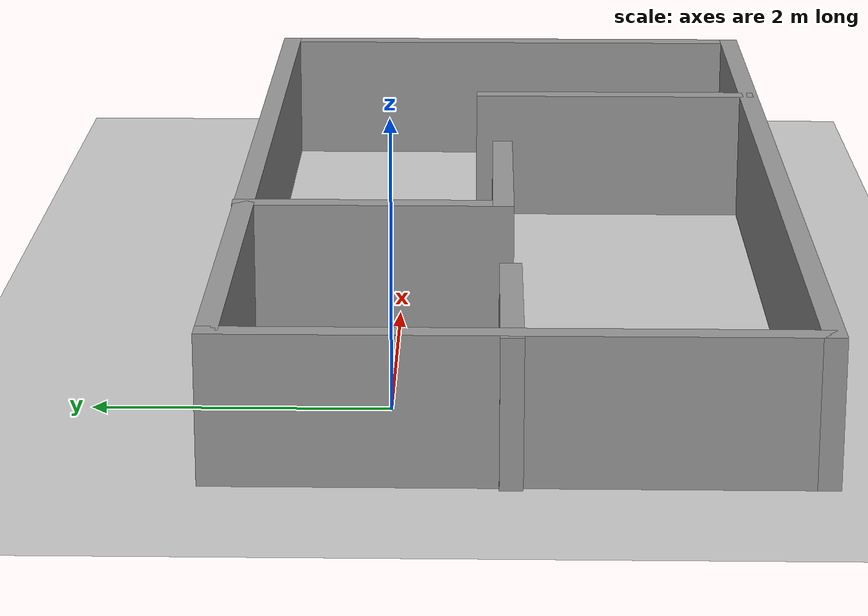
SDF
<sdf version="1.7">
 <world name="default">
  <light name="sun" type="directional">
   <pose>0 0 10 0 -0 0</pose>
   <diffuse>0.8 0.8 0.8 1</diffuse>
   <specular>0.2 0.2 0.2 1</specular>
   <attenuation>
    <range>1000</range>
    <constant>0.9</constant>
    <linear>0.01</linear>
    <quadratic>0.001</quadratic>
   </attenuation>
   <direction>-0.5 0.1 -0.9</direction>
   <spot><inner_angle>0</inner_angle><outer_angle>0</outer_angle><falloff>0</falloff></spot>
  </light>
  <model name="ground_plane">
   <static>1</static>
   <link name="link">
    <collision name="collision">
     <geometry><plane><normal>0 0 1</normal><size>100 100</size></plane></geometry>
     <surface>
      <contact><collide_bitmask>65535</collide_bitmask></contact>
      <friction><ode><mu>100</mu><mu2>50</mu2></ode></friction>
     </surface>
    </collision>
    <visual name="visual">
     <cast_shadows>0</cast_shadows>
     <geometry><plane><normal>0 0 1</normal><size>100 100</size></plane></geometry>
     <material>
      <script><uri>file://media/materials/scripts/gazebo.material</uri><name>Gazebo/Grey</name></script>
     </material>
    </visual>
   </link>
  </model>
  <gravity>0 0 -9.8</gravity>
  <magnetic_field>6e-06 2.3e-05 -4.2e-05</magnetic_field>
  <atmosphere type="adiabatic"/>
  <physics type="ode">
   <max_step_size>0.001</max_step_size>
   <real_time_factor>1</real_time_factor>
   <real_time_update_rate>1000</real_time_update_rate>
  </physics>
  <scene><ambient>0.4 0.4 0.4 1</ambient><background>0.7 0.7 0.7 1</background><shadows>1</shadows></scene>
  <audio><device>default</device></audio>
  <spherical_coordinates>
   <surface_model>EARTH_WGS84</surface_model>
   <latitude_deg>0</latitude_deg>
   <longitude_deg>0</longitude_deg>
   <elevation>0</elevation>
   <heading_deg>0</heading_deg>
  </spherical_coordinates>
  <model name="Untitled">
   <pose>2.61009 -0.222703 0 0 -0 0</pose>
   <link name="Wall_0">
    <collision name="Wall_0_Collision">
     <geometry><box><size>8 0.15 1</size></box></geometry>
     <pose>0 0 0.5 0 -0 0</pose>
    </collision>
    <visual name="Wall_0_Visual">
     <pose>0 0 0.5 0 -0 0</pose>
     <geometry><box><size>8 0.15 1</size></box></geometry>
     <material>
      <script><uri>file://media/materials/scripts/gazebo.material</uri><name>Gazebo/Grey</name></script>
      <ambient>1 1 1 1</ambient>
     </material>
     <meta><layer>0</layer></meta>
    </visual>
    <pose>0.0195 1.3175 0 0 -0 0</pose>
   </link>
   <link name="Wall_1">
    <collision name="Wall_1_Collision">
     <geometry><box><size>4 0.15 1</size></box></geometry>
     <pose>0 0 0.5 0 -0 0</pose>
    </collision>
    <visual name="Wall_1_Visual">
     <pose>0 0 0.5 0 -0 0</pose>
     <geometry><box><size>4 0.15 1</size></box></geometry>
     <material>
      <script><uri>file://media/materials/scripts/gazebo.material</uri><name>Gazebo/Grey</name></script>
      <ambient>1 1 1 1</ambient>
     </material>
     <meta><layer>0</layer></meta>
    </visual>
    <pose>3.9445 -0.6075 0 0 -0 -1.5708</pose>
   </link>
   <link name="Wall_10">
    <collision name="Wall_10_Collision">
     <geometry><box><size>1.5 0.15 1</size></box></geometry>
     <pose>0 0 0.5 0 -0 0</pose>
    </collision>
    <visual name="Wall_10_Visual">
     <pose>0 0 0.5 0 -0 0</pose>
     <geometry><box><size>1.5 0.15 1</size></box></geometry>
     <material>
      <script><uri>file://media/materials/scripts/gazebo.material</uri><name>Gazebo/Grey</name></script>
      <ambient>1 1 1 1</ambient>
     </material>
     <meta><layer>0</layer></meta>
    </visual>
    <pose>-3.2695 -0.5645 0 0 -0 0</pose>
   </link>
   <link name="Wall_2">
    <collision name="Wall_2_Collision">
     <geometry><box><size>8 0.15 1</size></box></geometry>
     <pose>0 0 0.5 0 -0 0</pose>
    </collision>
    <visual name="Wall_2_Visual">
     <pose>0 0 0.5 0 -0 0</pose>
     <geometry><box><size>8 0.15 1</size></box></geometry>
     <material>
      <script><uri>file://media/materials/scripts/gazebo.material</uri><name>Gazebo/Grey</name></script>
      <ambient>1 1 1 1</ambient>
     </material>
     <meta><layer>0</layer></meta>
    </visual>
    <pose>0.0195 -2.5325 0 0 -0 3.14159</pose>
   </link>
   <link name="Wall_3">
    <collision name="Wall_3_Collision">
     <geometry><box><size>4 0.15 1</size></box></geometry>
     <pose>0 0 0.5 0 -0 0</pose>
    </collision>
    <visual name="Wall_3_Visual">
     <pose>0 0 0.5 0 -0 0</pose>
     <geometry><box><size>4 0.15 1</size></box></geometry>
     <material>
      <script><uri>file://media/materials/scripts/gazebo.material</uri><name>Gazebo/Grey</name></script>
      <ambient>1 1 1 1</ambient>
     </material>
     <meta><layer>0</layer></meta>
    </visual>
    <pose>-3.9055 -0.6075 0 0 -0 1.5708</pose>
   </link>
   <link name="Wall_5">
    <collision name="Wall_5_Collision">
     <geometry><box><size>2 0.15 1</size></box></geometry>
     <pose>0 0 0.5 0 -0 0</pose>
    </collision>
    <visual name="Wall_5_Visual">
     <pose>0 0 0.5 0 -0 0</pose>
     <geometry><box><size>2 0.15 1</size></box></geometry>
     <material>
      <script><uri>file://media/materials/scripts/gazebo.material</uri><name>Gazebo/Grey</name></script>
      <ambient>1 1 1 1</ambient>
     </material>
     <meta><layer>0</layer></meta>
    </visual>
    <pose>-1.1285 0.4015 0 0 -0 -1.5708</pose>
   </link>
   <link name="Wall_6">
    <collision name="Wall_6_Collision">
     <geometry><box><size>1.75 0.15 1</size></box></geometry>
     <pose>0 0 0.5 0 -0 0</pose>
    </collision>
    <visual name="Wall_6_Visual">
     <pose>0 0 0.5 0 -0 0</pose>
     <geometry><box><size>1.75 0.15 1</size></box></geometry>
     <material>
      <script><uri>file://media/materials/scripts/gazebo.material</uri><name>Gazebo/Grey</name></script>
      <ambient>1 1 1 1</ambient>
     </material>
     <meta><layer>0</layer></meta>
    </visual>
    <pose>-0.3285 -0.5235 0 0 -0 0</pose>
   </link>
   <link name="Wall_8">
    <collision name="Wall_8_Collision">
     <geometry><box><size>2.25 0.15 1</size></box></geometry>
     <pose>0 0 0.5 0 -0 0</pose>
    </collision>
    <visual name="Wall_8_Visual">
     <pose>0 0 0.5 0 -0 0</pose>
     <geometry><box><size>2.25 0.15 1</size></box></geometry>
     <material>
      <script><uri>file://media/materials/scripts/gazebo.material</uri><name>Gazebo/Grey</name></script>
      <ambient>1 1 1 1</ambient>
     </material>
     <meta><layer>0</layer></meta>
    </visual>
    <pose>2.0285 -1.4455 0 0 -0 1.5708</pose>
   </link>
   <static>1</static>
  </model>
 </world>
</sdf>
